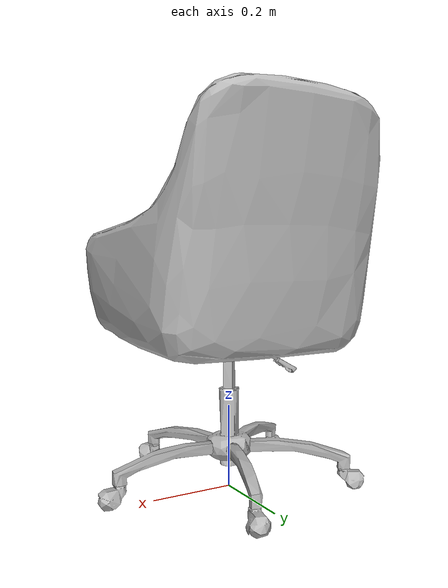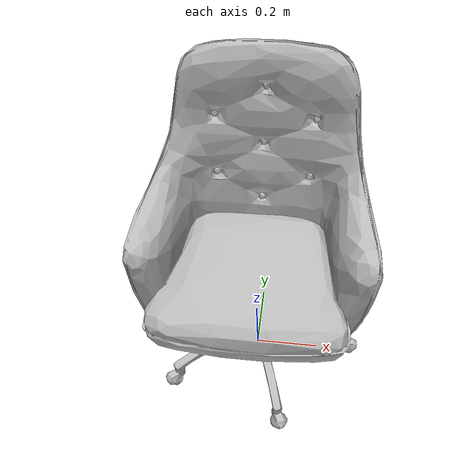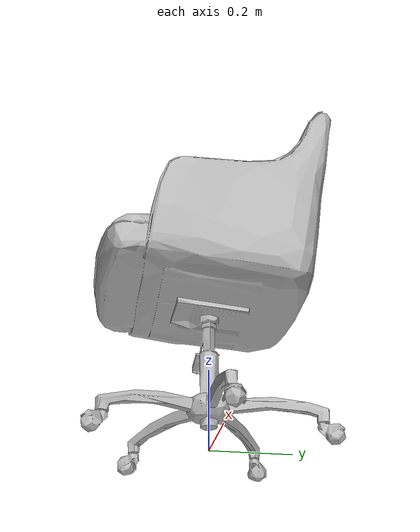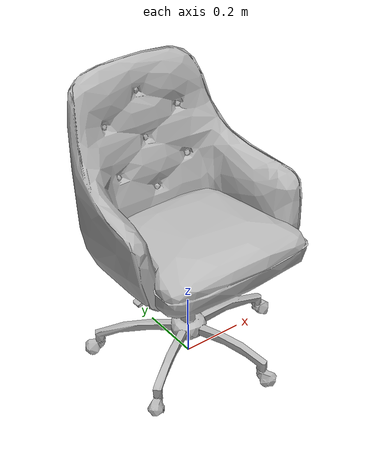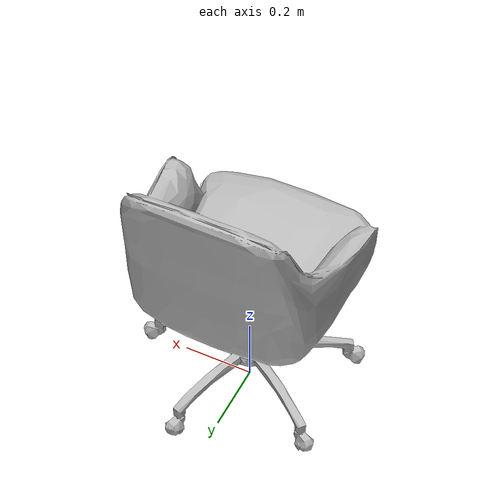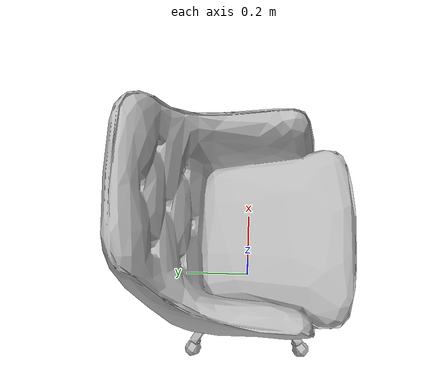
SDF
<sdf version="1.6">
	<model name="HomeOfficeDeskChairs_Oaed1cbd04270_lod0">
		<link name="main_link">
			<visual name="visual_RootNode">
				<geometry>
					<mesh>
						<uri>model://HomeOfficeDeskChairs_Oaed1cbd04270_lod0/meshes/visual_RootNode.dae</uri>
					</mesh>
				</geometry>
			</visual>
			<collision name="collision_RootNode_lod0_0">
				<geometry>
					<mesh>
						<uri>model://HomeOfficeDeskChairs_Oaed1cbd04270_lod0/meshes/collision_RootNode_lod0_0.dae</uri>
					</mesh>
				</geometry>
			</collision>
		</link>
	</model>
</sdf>
